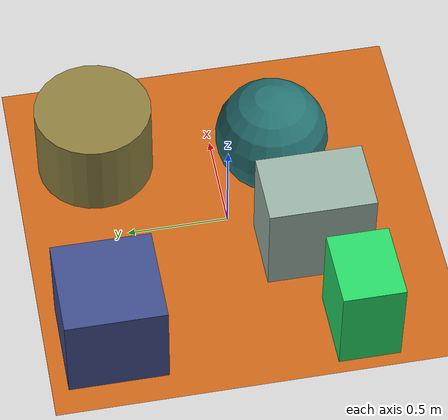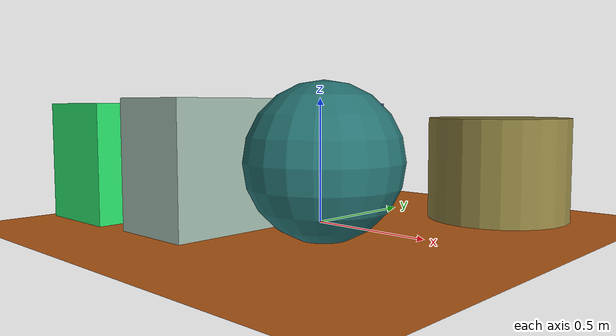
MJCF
<mujoco>
   <asset>
<texture type="skybox" builtin="gradient" rgb1="0.5 0.4 0.0" rgb2="0.2 0.3 0.7" width="256" height="256"/>
<texture name="gradient_0" builtin="gradient" rgb1="0.5 0.5 0.6" rgb2="0.0 0.1 0.5" width="200" height="200"/>
<texture name="gradient_1" builtin="gradient" rgb1="0.4 0.0 0.2" rgb2="0.7 1.0 0.3" width="200" height="200"/>
<texture name="checker_2" builtin="checker" type="2d" rgb1="0.2 0.8 0.4" rgb2="0.1 0.1 0.5" width="200" height="200"/>
<texture name="checker_3" builtin="checker" type="2d" rgb1="0.3 0.6 0.5" rgb2="0.9 0.8 0.8" width="200" height="200"/>
<texture name="gradient_4" builtin="gradient" rgb1="0.1 0.9 0.7" rgb2="0.2 0.8 0.1" width="200" height="200"/><material name="gradient_0_mat" reflectance="0" texture="gradient_0" texuniform="true"/>
<material name="gradient_1_mat" reflectance="0" texture="gradient_1" texuniform="true"/>
<material name="checker_2_mat" reflectance="0" texrepeat="7 7" texture="checker_2" texuniform="false" />
<material name="checker_3_mat" reflectance="0" texrepeat="3 3" texture="checker_3" texuniform="false" />
<material name="gradient_4_mat" reflectance="0" texture="gradient_4" texuniform="true"/>
   </asset>

   <worldbody>
      <light diffuse=".9 .9 .9" pos="0 0 3" dir="0 0 -1"/>
     <geom type="plane" size="1 1 0.1" rgba="0.8 0.4 0.1 1"/>
<geom type="box" pos="-0.63 0.68 0.24" size="0.24 0.24 0.24" material="gradient_0_mat" />
<geom type="cylinder" pos="0.47 0.59 0.21" size="0.29 0.21 0.21" material="gradient_1_mat" />
<geom type="sphere" pos="0.27 -0.27 0.28" size="0.28 0.28 0.28" material="checker_2_mat" />
<geom type="box" pos="-0.24 -0.38 0.25" size="0.18 0.26 0.25" material="checker_3_mat" />
<geom type="box" pos="-0.75 -0.51 0.24" size="0.19 0.15 0.24" material="gradient_4_mat" /><camera euler="60 0 180" fovy="60" name="camera_a" pos="0 -1.5 1"></camera>   </worldbody>
</mujoco>
